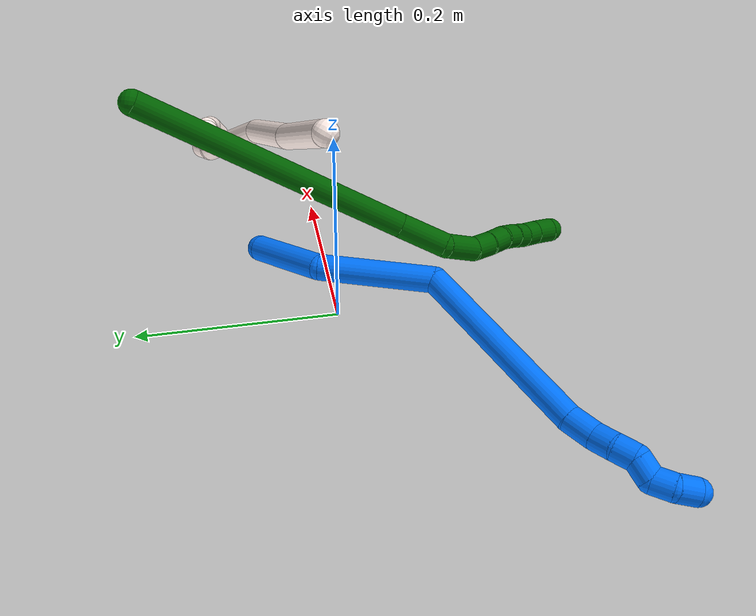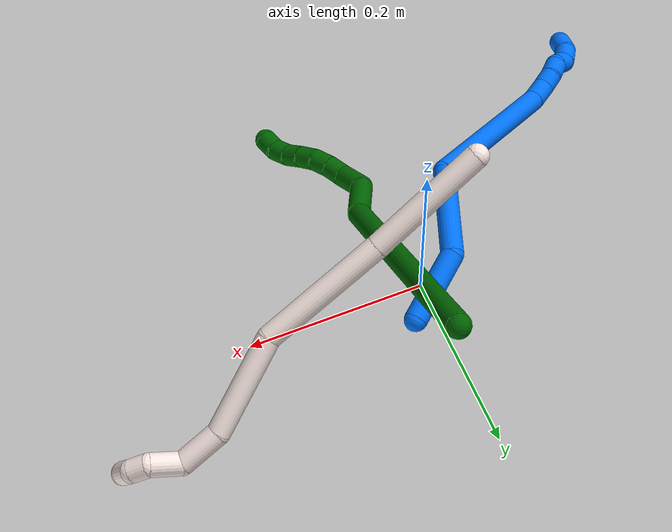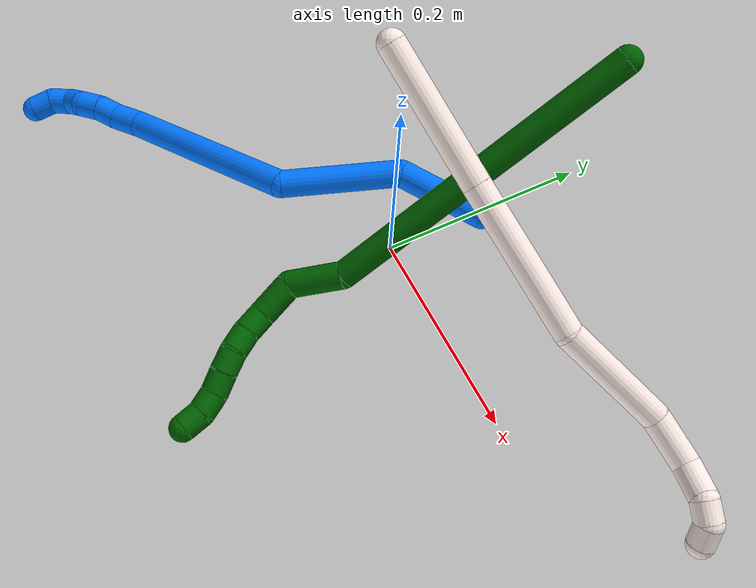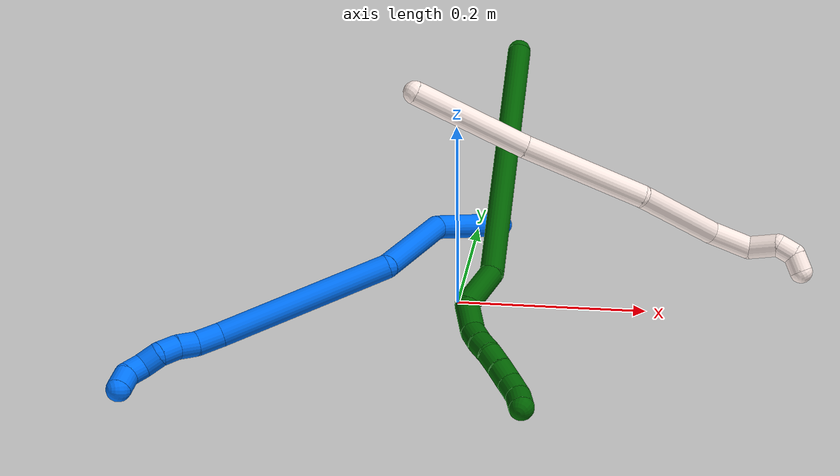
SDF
<sdf version="1.7">
 <world name="default">
  <model name="photoneo_s_sensor">
   <static>1</static>
   <pose>0 0 2 1.57079 1.57079 3.14159</pose>
   <link name="link">
    <inertial><mass>0.1</mass></inertial>
    <sensor name="sensor" type="depth">
     <update_rate>30</update_rate>
     <camera>
      <horizontal_fov>1.22</horizontal_fov>
      <image><width>1920</width><height>1200</height><format>B8G8R8</format></image>
      <clip><near>0.1</near><far>4</far></clip>
      <depth_camera><output>points</output></depth_camera>
     </camera>
     <plugin name="camera_plugin" filename="libgazebo_ros_depth_camera.so">
      <baseline>0.2</baseline>
      <alwaysOn>1</alwaysOn>
      <updateRate>0.0</updateRate>
      <cameraName>camera_ir</cameraName>
      <imageTopicName>/camera/color/image_raw</imageTopicName>
      <cameraInfoTopicName>/camera/color/camera_info</cameraInfoTopicName>
      <depthImageTopicName>/camera/depth/image_raw</depthImageTopicName>
      <depthImageCameraInfoTopicName>/camera/depth/camera_info</depthImageCameraInfoTopicName>
      <pointCloudTopicName>/camera/depth/points</pointCloudTopicName>
      <frameName>fr_optical</frameName>
      <pointCloudCutoff>0.1</pointCloudCutoff>
      <pointCloudCutoffMax>2.0</pointCloudCutoffMax>
      <distortionK1>0</distortionK1>
      <distortionK2>0</distortionK2>
      <distortionK3>0</distortionK3>
      <distortionT1>0</distortionT1>
      <distortionT2>0</distortionT2>
      <CxPrime>0</CxPrime>
      <Cx>0</Cx>
      <Cy>0</Cy>
      <focalLength>0</focalLength>
      <hackBaseline>0</hackBaseline>
     </plugin>
    </sensor>
   </link>
  </model>
  <model name="bin">
   <static>1</static>
   <link name="bottom">
    <collision name="collision-bottom">
     <pose>0 0 -0.01 0 -0 0</pose>
     <geometry><box><size>0.8 0.6 0.02</size></box></geometry>
     <surface>
      <friction><ode><mu>100</mu><mu2>100</mu2></ode></friction>
      <contact><collide_bitmask>65535</collide_bitmask></contact>
     </surface>
    </collision>
   </link>
   <link name="west_wall">
    <collision name="collision-west_wall">
     <pose>-0.41 0 0.1 0 -0 0</pose>
     <geometry><box><size>0.02 0.6 0.2</size></box></geometry>
     <surface>
      <friction><ode><mu>100</mu><mu2>100</mu2></ode></friction>
      <contact><collide_bitmask>65535</collide_bitmask></contact>
     </surface>
    </collision>
   </link>
   <link name="east_wall">
    <collision name="collision-east_wall">
     <pose>0.41 0 0.1 0 -0 0</pose>
     <geometry><box><size>0.02 0.6 0.2</size></box></geometry>
     <surface>
      <friction><ode><mu>100</mu><mu2>100</mu2></ode></friction>
      <contact><collide_bitmask>65535</collide_bitmask></contact>
     </surface>
    </collision>
   </link>
   <link name="south_wall">
    <collision name="collision-south_wall">
     <pose>0 -0.31 0.1 0 -0 0</pose>
     <geometry><box><size>0.8 0.02 0.2</size></box></geometry>
     <surface>
      <friction><ode><mu>100</mu><mu2>100</mu2></ode></friction>
      <contact><collide_bitmask>65535</collide_bitmask></contact>
     </surface>
    </collision>
   </link>
   <link name="north_wall">
    <collision name="collision-north_wall">
     <pose>0 0.31 0.1 0 -0 0</pose>
     <geometry><box><size>0.8 0.02 0.2</size></box></geometry>
     <surface>
      <friction><ode><mu>100</mu><mu2>100</mu2></ode></friction>
      <contact><collide_bitmask>65535</collide_bitmask></contact>
     </surface>
    </collision>
   </link>
  </model>
  <model name="6">
   <static>0</static>
   <link name="6">
    <collision name="collision-cylinder-e_1_1_4">
     <pose>-0.066591 -0.016334 -0.12907 3.01571 -0.473079 -2.63012</pose>
     <geometry><cylinder><radius>0.0125</radius><length>0.292302</length></cylinder></geometry>
     <surface>
      <friction><ode><mu>1.16</mu><mu2>1.16</mu2><slip1>0</slip1><slip2>0</slip2></ode></friction>
      <contact><ode><kp>1e+06</kp><kd>1</kd><max_vel>0</max_vel><min_depth>0.001</min_depth></ode></contact>
     </surface>
    </collision>
    <visual name="visual-cylinder-e_1_1_4">
     <pose>-0.066591 -0.016334 -0.12907 3.01571 -0.473079 -2.63012</pose>
     <geometry><cylinder><radius>0.0125</radius><length>0.292302</length></cylinder></geometry>
     <material><ambient>0 0.392157 0.003922 1</ambient></material>
    </visual>
    <collision name="collision-cylinder-e_2_4_5">
     <pose>-0.134299 -0.039733 -0.282119 2.85509 -0.044662 -0.30725</pose>
     <geometry><cylinder><radius>0.0125</radius><length>0.050048</length></cylinder></geometry>
     <surface>
      <friction><ode><mu>1.16</mu><mu2>1.16</mu2><slip1>0</slip1><slip2>0</slip2></ode></friction>
      <contact><ode><kp>1e+06</kp><kd>1</kd><max_vel>0</max_vel><min_depth>0.001</min_depth></ode></contact>
     </surface>
    </collision>
    <visual name="visual-cylinder-e_2_4_5">
     <pose>-0.134299 -0.039733 -0.282119 2.85509 -0.044662 -0.30725</pose>
     <geometry><cylinder><radius>0.0125</radius><length>0.050048</length></cylinder></geometry>
     <material><ambient>0 0.392157 0.003922 1</ambient></material>
    </visual>
    <collision name="collision-cylinder-e_3_5_6">
     <pose>-0.144595 -0.043338 -0.320962 -2.9129 -0.541539 2.35702</pose>
     <geometry><cylinder><radius>0.0125</radius><length>0.035616</length></cylinder></geometry>
     <surface>
      <friction><ode><mu>1.16</mu><mu2>1.16</mu2><slip1>0</slip1><slip2>0</slip2></ode></friction>
      <contact><ode><kp>1e+06</kp><kd>1</kd><max_vel>0</max_vel><min_depth>0.001</min_depth></ode></contact>
     </surface>
    </collision>
    <visual name="visual-cylinder-e_3_5_6">
     <pose>-0.144595 -0.043338 -0.320962 -2.9129 -0.541539 2.35702</pose>
     <geometry><cylinder><radius>0.0125</radius><length>0.035616</length></cylinder></geometry>
     <material><ambient>0 0.392157 0.003922 1</ambient></material>
    </visual>
    <collision name="collision-cylinder-e_4_6_7">
     <pose>-0.157671 -0.034364 -0.344336 -2.56666 -0.366838 1.1207</pose>
     <geometry><cylinder><radius>0.0125</radius><length>0.021729</length></cylinder></geometry>
     <surface>
      <friction><ode><mu>1.16</mu><mu2>1.16</mu2><slip1>0</slip1><slip2>0</slip2></ode></friction>
      <contact><ode><kp>1e+06</kp><kd>1</kd><max_vel>0</max_vel><min_depth>0.001</min_depth></ode></contact>
     </surface>
    </collision>
    <visual name="visual-cylinder-e_4_6_7">
     <pose>-0.157671 -0.034364 -0.344336 -2.56666 -0.366838 1.1207</pose>
     <geometry><cylinder><radius>0.0125</radius><length>0.021729</length></cylinder></geometry>
     <material><ambient>0 0.392157 0.003922 1</ambient></material>
    </visual>
    <collision name="collision-cylinder-e_5_7_8">
     <pose>-0.166097 -0.023142 -0.359821 -2.45572 -0.46571 1.17262</pose>
     <geometry><cylinder><radius>0.0125</radius><length>0.020172</length></cylinder></geometry>
     <surface>
      <friction><ode><mu>1.16</mu><mu2>1.16</mu2><slip1>0</slip1><slip2>0</slip2></ode></friction>
      <contact><ode><kp>1e+06</kp><kd>1</kd><max_vel>0</max_vel><min_depth>0.001</min_depth></ode></contact>
     </surface>
    </collision>
    <visual name="visual-cylinder-e_5_7_8">
     <pose>-0.166097 -0.023142 -0.359821 -2.45572 -0.46571 1.17262</pose>
     <geometry><cylinder><radius>0.0125</radius><length>0.020172</length></cylinder></geometry>
     <material><ambient>0 0.392157 0.003922 1</ambient></material>
    </visual>
    <collision name="collision-cylinder-e_6_8_9">
     <pose>-0.177191 -0.013214 -0.373131 -2.55397 -0.711631 1.77496</pose>
     <geometry><cylinder><radius>0.0125</radius><length>0.020103</length></cylinder></geometry>
     <surface>
      <friction><ode><mu>1.16</mu><mu2>1.16</mu2><slip1>0</slip1><slip2>0</slip2></ode></friction>
      <contact><ode><kp>1e+06</kp><kd>1</kd><max_vel>0</max_vel><min_depth>0.001</min_depth></ode></contact>
     </surface>
    </collision>
    <visual name="visual-cylinder-e_6_8_9">
     <pose>-0.177191 -0.013214 -0.373131 -2.55397 -0.711631 1.77496</pose>
     <geometry><cylinder><radius>0.0125</radius><length>0.020103</length></cylinder></geometry>
     <material><ambient>0 0.392157 0.003922 1</ambient></material>
    </visual>
    <collision name="collision-cylinder-e_7_9_10">
     <pose>-0.190821 -0.005387 -0.385555 -2.60687 -0.784581 1.97197</pose>
     <geometry><cylinder><radius>0.0125</radius><length>0.020002</length></cylinder></geometry>
     <surface>
      <friction><ode><mu>1.16</mu><mu2>1.16</mu2><slip1>0</slip1><slip2>0</slip2></ode></friction>
      <contact><ode><kp>1e+06</kp><kd>1</kd><max_vel>0</max_vel><min_depth>0.001</min_depth></ode></contact>
     </surface>
    </collision>
    <visual name="visual-cylinder-e_7_9_10">
     <pose>-0.190821 -0.005387 -0.385555 -2.60687 -0.784581 1.97197</pose>
     <geometry><cylinder><radius>0.0125</radius><length>0.020002</length></cylinder></geometry>
     <material><ambient>0 0.392157 0.003922 1</ambient></material>
    </visual>
    <collision name="collision-cylinder-e_8_10_11">
     <pose>-0.203152 0.002735 -0.398849 -2.58166 -0.554433 1.56039</pose>
     <geometry><cylinder><radius>0.0125</radius><length>0.02</length></cylinder></geometry>
     <surface>
      <friction><ode><mu>1.16</mu><mu2>1.16</mu2><slip1>0</slip1><slip2>0</slip2></ode></friction>
      <contact><ode><kp>1e+06</kp><kd>1</kd><max_vel>0</max_vel><min_depth>0.001</min_depth></ode></contact>
     </surface>
    </collision>
    <visual name="visual-cylinder-e_8_10_11">
     <pose>-0.203152 0.002735 -0.398849 -2.58166 -0.554433 1.56039</pose>
     <geometry><cylinder><radius>0.0125</radius><length>0.02</length></cylinder></geometry>
     <material><ambient>0 0.392157 0.003922 1</ambient></material>
    </visual>
    <collision name="collision-cylinder-e_9_11_2">
     <pose>-0.211139 0.011096 -0.414888 -2.73118 -0.275363 1.17468</pose>
     <geometry><cylinder><radius>0.0125</radius><length>0.020027</length></cylinder></geometry>
     <surface>
      <friction><ode><mu>1.16</mu><mu2>1.16</mu2><slip1>0</slip1><slip2>0</slip2></ode></friction>
      <contact><ode><kp>1e+06</kp><kd>1</kd><max_vel>0</max_vel><min_depth>0.001</min_depth></ode></contact>
     </surface>
    </collision>
    <visual name="visual-cylinder-e_9_11_2">
     <pose>-0.211139 0.011096 -0.414888 -2.73118 -0.275363 1.17468</pose>
     <geometry><cylinder><radius>0.0125</radius><length>0.020027</length></cylinder></geometry>
     <material><ambient>0 0.392157 0.003922 1</ambient></material>
    </visual>
    <collision name="collision-sphere-2">
     <pose>-0.213862 0.014941 -0.423725 0 -0 0</pose>
     <geometry><sphere><radius>0.0125</radius></sphere></geometry>
     <surface>
      <friction><ode><mu>1.16</mu><mu2>1.16</mu2><slip1>0</slip1><slip2>0</slip2></ode></friction>
      <contact><ode><kp>1e+06</kp><kd>1</kd><max_vel>0</max_vel><min_depth>0.001</min_depth></ode></contact>
     </surface>
    </collision>
    <visual name="visual-sphere-2">
     <pose>-0.213862 0.014941 -0.423725 0 -0 0</pose>
     <geometry><sphere><radius>0.0125</radius></sphere></geometry>
     <material><ambient>0 0.392157 0.003922 1</ambient></material>
    </visual>
    <collision name="collision-sphere-11">
     <pose>-0.208416 0.007251 -0.406052 0 -0 0</pose>
     <geometry><sphere><radius>0.0125</radius></sphere></geometry>
     <surface>
      <friction><ode><mu>1.16</mu><mu2>1.16</mu2><slip1>0</slip1><slip2>0</slip2></ode></friction>
      <contact><ode><kp>1e+06</kp><kd>1</kd><max_vel>0</max_vel><min_depth>0.001</min_depth></ode></contact>
     </surface>
    </collision>
    <visual name="visual-sphere-11">
     <pose>-0.208416 0.007251 -0.406052 0 -0 0</pose>
     <geometry><sphere><radius>0.0125</radius></sphere></geometry>
     <material><ambient>0 0.392157 0.003922 1</ambient></material>
    </visual>
    <collision name="collision-sphere-10">
     <pose>-0.197887 -0.00178 -0.391645 0 -0 0</pose>
     <geometry><sphere><radius>0.0125</radius></sphere></geometry>
     <surface>
      <friction><ode><mu>1.16</mu><mu2>1.16</mu2><slip1>0</slip1><slip2>0</slip2></ode></friction>
      <contact><ode><kp>1e+06</kp><kd>1</kd><max_vel>0</max_vel><min_depth>0.001</min_depth></ode></contact>
     </surface>
    </collision>
    <visual name="visual-sphere-10">
     <pose>-0.197887 -0.00178 -0.391645 0 -0 0</pose>
     <geometry><sphere><radius>0.0125</radius></sphere></geometry>
     <material><ambient>0 0.392157 0.003922 1</ambient></material>
    </visual>
    <collision name="collision-sphere-9">
     <pose>-0.183755 -0.008994 -0.379466 0 -0 0</pose>
     <geometry><sphere><radius>0.0125</radius></sphere></geometry>
     <surface>
      <friction><ode><mu>1.16</mu><mu2>1.16</mu2><slip1>0</slip1><slip2>0</slip2></ode></friction>
      <contact><ode><kp>1e+06</kp><kd>1</kd><max_vel>0</max_vel><min_depth>0.001</min_depth></ode></contact>
     </surface>
    </collision>
    <visual name="visual-sphere-9">
     <pose>-0.183755 -0.008994 -0.379466 0 -0 0</pose>
     <geometry><sphere><radius>0.0125</radius></sphere></geometry>
     <material><ambient>0 0.392157 0.003922 1</ambient></material>
    </visual>
    <collision name="collision-sphere-4">
     <pose>-0.133181 -0.032668 -0.258139 0 -0 0</pose>
     <geometry><sphere><radius>0.0125</radius></sphere></geometry>
     <surface>
      <friction><ode><mu>1.16</mu><mu2>1.16</mu2><slip1>0</slip1><slip2>0</slip2></ode></friction>
      <contact><ode><kp>1e+06</kp><kd>1</kd><max_vel>0</max_vel><min_depth>0.001</min_depth></ode></contact>
     </surface>
    </collision>
    <visual name="visual-sphere-4">
     <pose>-0.133181 -0.032668 -0.258139 0 -0 0</pose>
     <geometry><sphere><radius>0.0125</radius></sphere></geometry>
     <material><ambient>0 0.392157 0.003922 1</ambient></material>
    </visual>
    <collision name="collision-sphere-1">
     <geometry><sphere><radius>0.0125</radius></sphere></geometry>
     <surface>
      <friction><ode><mu>1.16</mu><mu2>1.16</mu2><slip1>0</slip1><slip2>0</slip2></ode></friction>
      <contact><ode><kp>1e+06</kp><kd>1</kd><max_vel>0</max_vel><min_depth>0.001</min_depth></ode></contact>
     </surface>
    </collision>
    <visual name="visual-sphere-1">
     <geometry><sphere><radius>0.0125</radius></sphere></geometry>
     <material><ambient>0 0.392157 0.003922 1</ambient></material>
    </visual>
    <collision name="collision-sphere-8">
     <pose>-0.170626 -0.017434 -0.366795 0 -0 0</pose>
     <geometry><sphere><radius>0.0125</radius></sphere></geometry>
     <surface>
      <friction><ode><mu>1.16</mu><mu2>1.16</mu2><slip1>0</slip1><slip2>0</slip2></ode></friction>
      <contact><ode><kp>1e+06</kp><kd>1</kd><max_vel>0</max_vel><min_depth>0.001</min_depth></ode></contact>
     </surface>
    </collision>
    <visual name="visual-sphere-8">
     <pose>-0.170626 -0.017434 -0.366795 0 -0 0</pose>
     <geometry><sphere><radius>0.0125</radius></sphere></geometry>
     <material><ambient>0 0.392157 0.003922 1</ambient></material>
    </visual>
    <collision name="collision-sphere-5">
     <pose>-0.135416 -0.046798 -0.306099 0 -0 0</pose>
     <geometry><sphere><radius>0.0125</radius></sphere></geometry>
     <surface>
      <friction><ode><mu>1.16</mu><mu2>1.16</mu2><slip1>0</slip1><slip2>0</slip2></ode></friction>
      <contact><ode><kp>1e+06</kp><kd>1</kd><max_vel>0</max_vel><min_depth>0.001</min_depth></ode></contact>
     </surface>
    </collision>
    <visual name="visual-sphere-5">
     <pose>-0.135416 -0.046798 -0.306099 0 -0 0</pose>
     <geometry><sphere><radius>0.0125</radius></sphere></geometry>
     <material><ambient>0 0.392157 0.003922 1</ambient></material>
    </visual>
    <collision name="collision-sphere-6">
     <pose>-0.153774 -0.039879 -0.335825 0 -0 0</pose>
     <geometry><sphere><radius>0.0125</radius></sphere></geometry>
     <surface>
      <friction><ode><mu>1.16</mu><mu2>1.16</mu2><slip1>0</slip1><slip2>0</slip2></ode></friction>
      <contact><ode><kp>1e+06</kp><kd>1</kd><max_vel>0</max_vel><min_depth>0.001</min_depth></ode></contact>
     </surface>
    </collision>
    <visual name="visual-sphere-6">
     <pose>-0.153774 -0.039879 -0.335825 0 -0 0</pose>
     <geometry><sphere><radius>0.0125</radius></sphere></geometry>
     <material><ambient>0 0.392157 0.003922 1</ambient></material>
    </visual>
    <collision name="collision-sphere-7">
     <pose>-0.161568 -0.028849 -0.352847 0 -0 0</pose>
     <geometry><sphere><radius>0.0125</radius></sphere></geometry>
     <surface>
      <friction><ode><mu>1.16</mu><mu2>1.16</mu2><slip1>0</slip1><slip2>0</slip2></ode></friction>
      <contact><ode><kp>1e+06</kp><kd>1</kd><max_vel>0</max_vel><min_depth>0.001</min_depth></ode></contact>
     </surface>
    </collision>
    <visual name="visual-sphere-7">
     <pose>-0.161568 -0.028849 -0.352847 0 -0 0</pose>
     <geometry><sphere><radius>0.0125</radius></sphere></geometry>
     <material><ambient>0 0.392157 0.003922 1</ambient></material>
    </visual>
    <inertial>
     <pose>-0.107566 -0.019233 -0.219036 0 -0 0</pose>
     <mass>0.5</mass>
     <inertia>
      <ixx>-0.002536</ixx>
      <ixy>0</ixy>
      <ixz>0</ixz>
      <iyy>0.000959</iyy>
      <iyz>0</iyz>
      <izz>0.00116</izz>
     </inertia>
    </inertial>
   </link>
   <pose>0.048631 0.174333 0.227417 1.35994 -0.923332 3.07341</pose>
  </model>
  <model name="11">
   <static>0</static>
   <link name="11">
    <collision name="collision-cylinder-e_1_1_4">
     <pose>0.044483 0.037676 0.029669 -0.903729 0.747847 -0.376385</pose>
     <geometry><cylinder><radius>0.0125</radius><length>0.13082</length></cylinder></geometry>
     <surface>
      <friction><ode><mu>1.16</mu><mu2>1.16</mu2><slip1>0</slip1><slip2>0</slip2></ode></friction>
      <contact><ode><kp>1e+06</kp><kd>1</kd><max_vel>0</max_vel><min_depth>0.001</min_depth></ode></contact>
     </surface>
    </collision>
    <visual name="visual-cylinder-e_1_1_4">
     <pose>0.044483 0.037676 0.029669 -0.903729 0.747847 -0.376385</pose>
     <geometry><cylinder><radius>0.0125</radius><length>0.13082</length></cylinder></geometry>
     <material><ambient>1 0.933333 0.909804 1</ambient></material>
    </visual>
    <collision name="collision-cylinder-e_2_4_5">
     <pose>0.138002 0.112032 0.09287 -0.830231 0.778709 -0.357795</pose>
     <geometry><cylinder><radius>0.0125</radius><length>0.139634</length></cylinder></geometry>
     <surface>
      <friction><ode><mu>1.16</mu><mu2>1.16</mu2><slip1>0</slip1><slip2>0</slip2></ode></friction>
      <contact><ode><kp>1e+06</kp><kd>1</kd><max_vel>0</max_vel><min_depth>0.001</min_depth></ode></contact>
     </surface>
    </collision>
    <visual name="visual-cylinder-e_2_4_5">
     <pose>0.138002 0.112032 0.09287 -0.830231 0.778709 -0.357795</pose>
     <geometry><cylinder><radius>0.0125</radius><length>0.139634</length></cylinder></geometry>
     <material><ambient>1 0.933333 0.909804 1</ambient></material>
    </visual>
    <collision name="collision-cylinder-e_3_5_6">
     <pose>0.208201 0.188159 0.156631 -0.916897 0.402566 -0.200724</pose>
     <geometry><cylinder><radius>0.0125</radius><length>0.108031</length></cylinder></geometry>
     <surface>
      <friction><ode><mu>1.16</mu><mu2>1.16</mu2><slip1>0</slip1><slip2>0</slip2></ode></friction>
      <contact><ode><kp>1e+06</kp><kd>1</kd><max_vel>0</max_vel><min_depth>0.001</min_depth></ode></contact>
     </surface>
    </collision>
    <visual name="visual-cylinder-e_3_5_6">
     <pose>0.208201 0.188159 0.156631 -0.916897 0.402566 -0.200724</pose>
     <geometry><cylinder><radius>0.0125</radius><length>0.108031</length></cylinder></geometry>
     <material><ambient>1 0.933333 0.909804 1</ambient></material>
    </visual>
    <collision name="collision-cylinder-e_4_6_7">
     <pose>0.245814 0.240019 0.198665 -0.810578 0.765162 -0.341929</pose>
     <geometry><cylinder><radius>0.0125</radius><length>0.047501</length></cylinder></geometry>
     <surface>
      <friction><ode><mu>1.16</mu><mu2>1.16</mu2><slip1>0</slip1><slip2>0</slip2></ode></friction>
      <contact><ode><kp>1e+06</kp><kd>1</kd><max_vel>0</max_vel><min_depth>0.001</min_depth></ode></contact>
     </surface>
    </collision>
    <visual name="visual-cylinder-e_4_6_7">
     <pose>0.245814 0.240019 0.198665 -0.810578 0.765162 -0.341929</pose>
     <geometry><cylinder><radius>0.0125</radius><length>0.047501</length></cylinder></geometry>
     <material><ambient>1 0.933333 0.909804 1</ambient></material>
    </visual>
    <collision name="collision-cylinder-e_5_7_8">
     <pose>0.276837 0.248766 0.217951 0.455725 1.05137 0.267447</pose>
     <geometry><cylinder><radius>0.0125</radius><length>0.033571</length></cylinder></geometry>
     <surface>
      <friction><ode><mu>1.16</mu><mu2>1.16</mu2><slip1>0</slip1><slip2>0</slip2></ode></friction>
      <contact><ode><kp>1e+06</kp><kd>1</kd><max_vel>0</max_vel><min_depth>0.001</min_depth></ode></contact>
     </surface>
    </collision>
    <visual name="visual-cylinder-e_5_7_8">
     <pose>0.276837 0.248766 0.217951 0.455725 1.05137 0.267447</pose>
     <geometry><cylinder><radius>0.0125</radius><length>0.033571</length></cylinder></geometry>
     <material><ambient>1 0.933333 0.909804 1</ambient></material>
    </visual>
    <collision name="collision-cylinder-e_6_8_9">
     <pose>0.300483 0.248947 0.227333 -1.11218 1.12909 -0.749969</pose>
     <geometry><cylinder><radius>0.0125</radius><length>0.020077</length></cylinder></geometry>
     <surface>
      <friction><ode><mu>1.16</mu><mu2>1.16</mu2><slip1>0</slip1><slip2>0</slip2></ode></friction>
      <contact><ode><kp>1e+06</kp><kd>1</kd><max_vel>0</max_vel><min_depth>0.001</min_depth></ode></contact>
     </surface>
    </collision>
    <visual name="visual-cylinder-e_6_8_9">
     <pose>0.300483 0.248947 0.227333 -1.11218 1.12909 -0.749969</pose>
     <geometry><cylinder><radius>0.0125</radius><length>0.020077</length></cylinder></geometry>
     <material><ambient>1 0.933333 0.909804 1</ambient></material>
    </visual>
    <collision name="collision-cylinder-e_7_9_2">
     <pose>0.316488 0.259289 0.22556 -2.0855 0.748465 -1.18518</pose>
     <geometry><cylinder><radius>0.0125</radius><length>0.020366</length></cylinder></geometry>
     <surface>
      <friction><ode><mu>1.16</mu><mu2>1.16</mu2><slip1>0</slip1><slip2>0</slip2></ode></friction>
      <contact><ode><kp>1e+06</kp><kd>1</kd><max_vel>0</max_vel><min_depth>0.001</min_depth></ode></contact>
     </surface>
    </collision>
    <visual name="visual-cylinder-e_7_9_2">
     <pose>0.316488 0.259289 0.22556 -2.0855 0.748465 -1.18518</pose>
     <geometry><cylinder><radius>0.0125</radius><length>0.020366</length></cylinder></geometry>
     <material><ambient>1 0.933333 0.909804 1</ambient></material>
    </visual>
    <collision name="collision-sphere-2">
     <pose>0.323418 0.265784 0.221886 0 -0 0</pose>
     <geometry><sphere><radius>0.0125</radius></sphere></geometry>
     <surface>
      <friction><ode><mu>1.16</mu><mu2>1.16</mu2><slip1>0</slip1><slip2>0</slip2></ode></friction>
      <contact><ode><kp>1e+06</kp><kd>1</kd><max_vel>0</max_vel><min_depth>0.001</min_depth></ode></contact>
     </surface>
    </collision>
    <visual name="visual-sphere-2">
     <pose>0.323418 0.265784 0.221886 0 -0 0</pose>
     <geometry><sphere><radius>0.0125</radius></sphere></geometry>
     <material><ambient>1 0.933333 0.909804 1</ambient></material>
    </visual>
    <collision name="collision-sphere-9">
     <pose>0.309558 0.252794 0.229233 0 -0 0</pose>
     <geometry><sphere><radius>0.0125</radius></sphere></geometry>
     <surface>
      <friction><ode><mu>1.16</mu><mu2>1.16</mu2><slip1>0</slip1><slip2>0</slip2></ode></friction>
      <contact><ode><kp>1e+06</kp><kd>1</kd><max_vel>0</max_vel><min_depth>0.001</min_depth></ode></contact>
     </surface>
    </collision>
    <visual name="visual-sphere-9">
     <pose>0.309558 0.252794 0.229233 0 -0 0</pose>
     <geometry><sphere><radius>0.0125</radius></sphere></geometry>
     <material><ambient>1 0.933333 0.909804 1</ambient></material>
    </visual>
    <collision name="collision-sphere-4">
     <pose>0.088965 0.075352 0.059339 0 -0 0</pose>
     <geometry><sphere><radius>0.0125</radius></sphere></geometry>
     <surface>
      <friction><ode><mu>1.16</mu><mu2>1.16</mu2><slip1>0</slip1><slip2>0</slip2></ode></friction>
      <contact><ode><kp>1e+06</kp><kd>1</kd><max_vel>0</max_vel><min_depth>0.001</min_depth></ode></contact>
     </surface>
    </collision>
    <visual name="visual-sphere-4">
     <pose>0.088965 0.075352 0.059339 0 -0 0</pose>
     <geometry><sphere><radius>0.0125</radius></sphere></geometry>
     <material><ambient>1 0.933333 0.909804 1</ambient></material>
    </visual>
    <collision name="collision-sphere-1">
     <geometry><sphere><radius>0.0125</radius></sphere></geometry>
     <surface>
      <friction><ode><mu>1.16</mu><mu2>1.16</mu2><slip1>0</slip1><slip2>0</slip2></ode></friction>
      <contact><ode><kp>1e+06</kp><kd>1</kd><max_vel>0</max_vel><min_depth>0.001</min_depth></ode></contact>
     </surface>
    </collision>
    <visual name="visual-sphere-1">
     <geometry><sphere><radius>0.0125</radius></sphere></geometry>
     <material><ambient>1 0.933333 0.909804 1</ambient></material>
    </visual>
    <collision name="collision-sphere-8">
     <pose>0.291408 0.245099 0.225433 0 -0 0</pose>
     <geometry><sphere><radius>0.0125</radius></sphere></geometry>
     <surface>
      <friction><ode><mu>1.16</mu><mu2>1.16</mu2><slip1>0</slip1><slip2>0</slip2></ode></friction>
      <contact><ode><kp>1e+06</kp><kd>1</kd><max_vel>0</max_vel><min_depth>0.001</min_depth></ode></contact>
     </surface>
    </collision>
    <visual name="visual-sphere-8">
     <pose>0.291408 0.245099 0.225433 0 -0 0</pose>
     <geometry><sphere><radius>0.0125</radius></sphere></geometry>
     <material><ambient>1 0.933333 0.909804 1</ambient></material>
    </visual>
    <collision name="collision-sphere-5">
     <pose>0.187039 0.148713 0.126401 0 -0 0</pose>
     <geometry><sphere><radius>0.0125</radius></sphere></geometry>
     <surface>
      <friction><ode><mu>1.16</mu><mu2>1.16</mu2><slip1>0</slip1><slip2>0</slip2></ode></friction>
      <contact><ode><kp>1e+06</kp><kd>1</kd><max_vel>0</max_vel><min_depth>0.001</min_depth></ode></contact>
     </surface>
    </collision>
    <visual name="visual-sphere-5">
     <pose>0.187039 0.148713 0.126401 0 -0 0</pose>
     <geometry><sphere><radius>0.0125</radius></sphere></geometry>
     <material><ambient>1 0.933333 0.909804 1</ambient></material>
    </visual>
    <collision name="collision-sphere-6">
     <pose>0.229363 0.227605 0.186861 0 -0 0</pose>
     <geometry><sphere><radius>0.0125</radius></sphere></geometry>
     <surface>
      <friction><ode><mu>1.16</mu><mu2>1.16</mu2><slip1>0</slip1><slip2>0</slip2></ode></friction>
      <contact><ode><kp>1e+06</kp><kd>1</kd><max_vel>0</max_vel><min_depth>0.001</min_depth></ode></contact>
     </surface>
    </collision>
    <visual name="visual-sphere-6">
     <pose>0.229363 0.227605 0.186861 0 -0 0</pose>
     <geometry><sphere><radius>0.0125</radius></sphere></geometry>
     <material><ambient>1 0.933333 0.909804 1</ambient></material>
    </visual>
    <collision name="collision-sphere-7">
     <pose>0.262265 0.252433 0.21047 0 -0 0</pose>
     <geometry><sphere><radius>0.0125</radius></sphere></geometry>
     <surface>
      <friction><ode><mu>1.16</mu><mu2>1.16</mu2><slip1>0</slip1><slip2>0</slip2></ode></friction>
      <contact><ode><kp>1e+06</kp><kd>1</kd><max_vel>0</max_vel><min_depth>0.001</min_depth></ode></contact>
     </surface>
    </collision>
    <visual name="visual-sphere-7">
     <pose>0.262265 0.252433 0.21047 0 -0 0</pose>
     <geometry><sphere><radius>0.0125</radius></sphere></geometry>
     <material><ambient>1 0.933333 0.909804 1</ambient></material>
    </visual>
    <inertial>
     <pose>0.16206 0.141861 0.119363 0 -0 0</pose>
     <mass>0.5</mass>
     <inertia>
      <ixx>0.000287</ixx>
      <ixy>0</ixy>
      <ixz>0</ixz>
      <iyy>0.000311</iyy>
      <iyz>0</iyz>
      <izz>-0.000651</izz>
     </inertia>
    </inertial>
   </link>
   <pose>-0.045121 0.013172 0.231374 -1.23133 0.13734 -0.597788</pose>
  </model>
  <model name="14">
   <static>0</static>
   <link name="14">
    <collision name="collision-cylinder-e_1_1_4">
     <pose>-0.00066 7.5e-05 0.04087 -0.001825 -0.016141 1.5e-05</pose>
     <geometry><cylinder><radius>0.0125</radius><length>0.081751</length></cylinder></geometry>
     <surface>
      <friction><ode><mu>1.16</mu><mu2>1.16</mu2><slip1>0</slip1><slip2>0</slip2></ode></friction>
      <contact><ode><kp>1e+06</kp><kd>1</kd><max_vel>0</max_vel><min_depth>0.001</min_depth></ode></contact>
     </surface>
    </collision>
    <visual name="visual-cylinder-e_1_1_4">
     <pose>-0.00066 7.5e-05 0.04087 -0.001825 -0.016141 1.5e-05</pose>
     <geometry><cylinder><radius>0.0125</radius><length>0.081751</length></cylinder></geometry>
     <material><ambient>0 0.462745 1 1</ambient></material>
    </visual>
    <collision name="collision-cylinder-e_2_4_5">
     <pose>-0.011082 -0.028775 0.127272 0.565944 -0.179039 -0.052188</pose>
     <geometry><cylinder><radius>0.0125</radius><length>0.109637</length></cylinder></geometry>
     <surface>
      <friction><ode><mu>1.16</mu><mu2>1.16</mu2><slip1>0</slip1><slip2>0</slip2></ode></friction>
      <contact><ode><kp>1e+06</kp><kd>1</kd><max_vel>0</max_vel><min_depth>0.001</min_depth></ode></contact>
     </surface>
    </collision>
    <visual name="visual-cylinder-e_2_4_5">
     <pose>-0.011082 -0.028775 0.127272 0.565944 -0.179039 -0.052188</pose>
     <geometry><cylinder><radius>0.0125</radius><length>0.109637</length></cylinder></geometry>
     <material><ambient>0 0.462745 1 1</ambient></material>
    </visual>
    <collision name="collision-cylinder-e_3_5_6">
     <pose>-0.060591 -0.042813 0.253212 -0.183066 -0.452424 0.042245</pose>
     <geometry><cylinder><radius>0.0125</radius><length>0.181846</length></cylinder></geometry>
     <surface>
      <friction><ode><mu>1.16</mu><mu2>1.16</mu2><slip1>0</slip1><slip2>0</slip2></ode></friction>
      <contact><ode><kp>1e+06</kp><kd>1</kd><max_vel>0</max_vel><min_depth>0.001</min_depth></ode></contact>
     </surface>
    </collision>
    <visual name="visual-cylinder-e_3_5_6">
     <pose>-0.060591 -0.042813 0.253212 -0.183066 -0.452424 0.042245</pose>
     <geometry><cylinder><radius>0.0125</radius><length>0.181846</length></cylinder></geometry>
     <material><ambient>0 0.462745 1 1</ambient></material>
    </visual>
    <collision name="collision-cylinder-e_4_6_7">
     <pose>-0.104773 -0.027614 0.346213 -0.024828 -0.338553 0.004244</pose>
     <geometry><cylinder><radius>0.0125</radius><length>0.026709</length></cylinder></geometry>
     <surface>
      <friction><ode><mu>1.16</mu><mu2>1.16</mu2><slip1>0</slip1><slip2>0</slip2></ode></friction>
      <contact><ode><kp>1e+06</kp><kd>1</kd><max_vel>0</max_vel><min_depth>0.001</min_depth></ode></contact>
     </surface>
    </collision>
    <visual name="visual-cylinder-e_4_6_7">
     <pose>-0.104773 -0.027614 0.346213 -0.024828 -0.338553 0.004244</pose>
     <geometry><cylinder><radius>0.0125</radius><length>0.026709</length></cylinder></geometry>
     <material><ambient>0 0.462745 1 1</ambient></material>
    </visual>
    <collision name="collision-cylinder-e_5_7_8">
     <pose>-0.110567 -0.026818 0.368729 -0.04858 -0.135948 0.003308</pose>
     <geometry><cylinder><radius>0.0125</radius><length>0.020055</length></cylinder></geometry>
     <surface>
      <friction><ode><mu>1.16</mu><mu2>1.16</mu2><slip1>0</slip1><slip2>0</slip2></ode></friction>
      <contact><ode><kp>1e+06</kp><kd>1</kd><max_vel>0</max_vel><min_depth>0.001</min_depth></ode></contact>
     </surface>
    </collision>
    <visual name="visual-cylinder-e_5_7_8">
     <pose>-0.110567 -0.026818 0.368729 -0.04858 -0.135948 0.003308</pose>
     <geometry><cylinder><radius>0.0125</radius><length>0.020055</length></cylinder></geometry>
     <material><ambient>0 0.462745 1 1</ambient></material>
    </visual>
    <collision name="collision-cylinder-e_6_8_9">
     <pose>-0.114676 -0.027497 0.388197 0.121056 -0.278598 -0.016993</pose>
     <geometry><cylinder><radius>0.0125</radius><length>0.020002</length></cylinder></geometry>
     <surface>
      <friction><ode><mu>1.16</mu><mu2>1.16</mu2><slip1>0</slip1><slip2>0</slip2></ode></friction>
      <contact><ode><kp>1e+06</kp><kd>1</kd><max_vel>0</max_vel><min_depth>0.001</min_depth></ode></contact>
     </surface>
    </collision>
    <visual name="visual-cylinder-e_6_8_9">
     <pose>-0.114676 -0.027497 0.388197 0.121056 -0.278598 -0.016993</pose>
     <geometry><cylinder><radius>0.0125</radius><length>0.020002</length></cylinder></geometry>
     <material><ambient>0 0.462745 1 1</ambient></material>
    </visual>
    <collision name="collision-cylinder-e_7_9_10">
     <pose>-0.124044 -0.026798 0.405005 -0.250713 -0.723138 0.095246</pose>
     <geometry><cylinder><radius>0.0125</radius><length>0.02</length></cylinder></geometry>
     <surface>
      <friction><ode><mu>1.16</mu><mu2>1.16</mu2><slip1>0</slip1><slip2>0</slip2></ode></friction>
      <contact><ode><kp>1e+06</kp><kd>1</kd><max_vel>0</max_vel><min_depth>0.001</min_depth></ode></contact>
     </surface>
    </collision>
    <visual name="visual-cylinder-e_7_9_10">
     <pose>-0.124044 -0.026798 0.405005 -0.250713 -0.723138 0.095246</pose>
     <geometry><cylinder><radius>0.0125</radius><length>0.02</length></cylinder></geometry>
     <material><ambient>0 0.462745 1 1</ambient></material>
    </visual>
    <collision name="collision-cylinder-e_8_10_11">
     <pose>-0.133367 -0.02814 0.421348 0.339038 -0.273945 -0.047176</pose>
     <geometry><cylinder><radius>0.0125</radius><length>0.02</length></cylinder></geometry>
     <surface>
      <friction><ode><mu>1.16</mu><mu2>1.16</mu2><slip1>0</slip1><slip2>0</slip2></ode></friction>
      <contact><ode><kp>1e+06</kp><kd>1</kd><max_vel>0</max_vel><min_depth>0.001</min_depth></ode></contact>
     </surface>
    </collision>
    <visual name="visual-cylinder-e_8_10_11">
     <pose>-0.133367 -0.02814 0.421348 0.339038 -0.273945 -0.047176</pose>
     <geometry><cylinder><radius>0.0125</radius><length>0.02</length></cylinder></geometry>
     <material><ambient>0 0.462745 1 1</ambient></material>
    </visual>
    <collision name="collision-cylinder-e_9_11_2">
     <pose>-0.140156 -0.037986 0.436685 0.815311 -0.420675 -0.183875</pose>
     <geometry><cylinder><radius>0.0125</radius><length>0.02</length></cylinder></geometry>
     <surface>
      <friction><ode><mu>1.16</mu><mu2>1.16</mu2><slip1>0</slip1><slip2>0</slip2></ode></friction>
      <contact><ode><kp>1e+06</kp><kd>1</kd><max_vel>0</max_vel><min_depth>0.001</min_depth></ode></contact>
     </surface>
    </collision>
    <visual name="visual-cylinder-e_9_11_2">
     <pose>-0.140156 -0.037986 0.436685 0.815311 -0.420675 -0.183875</pose>
     <geometry><cylinder><radius>0.0125</radius><length>0.02</length></cylinder></geometry>
     <material><ambient>0 0.462745 1 1</ambient></material>
    </visual>
    <collision name="collision-sphere-2">
     <pose>-0.14424 -0.044631 0.442944 0 -0 0</pose>
     <geometry><sphere><radius>0.0125</radius></sphere></geometry>
     <surface>
      <friction><ode><mu>1.16</mu><mu2>1.16</mu2><slip1>0</slip1><slip2>0</slip2></ode></friction>
      <contact><ode><kp>1e+06</kp><kd>1</kd><max_vel>0</max_vel><min_depth>0.001</min_depth></ode></contact>
     </surface>
    </collision>
    <visual name="visual-sphere-2">
     <pose>-0.14424 -0.044631 0.442944 0 -0 0</pose>
     <geometry><sphere><radius>0.0125</radius></sphere></geometry>
     <material><ambient>0 0.462745 1 1</ambient></material>
    </visual>
    <collision name="collision-sphere-11">
     <pose>-0.136073 -0.031342 0.430427 0 -0 0</pose>
     <geometry><sphere><radius>0.0125</radius></sphere></geometry>
     <surface>
      <friction><ode><mu>1.16</mu><mu2>1.16</mu2><slip1>0</slip1><slip2>0</slip2></ode></friction>
      <contact><ode><kp>1e+06</kp><kd>1</kd><max_vel>0</max_vel><min_depth>0.001</min_depth></ode></contact>
     </surface>
    </collision>
    <visual name="visual-sphere-11">
     <pose>-0.136073 -0.031342 0.430427 0 -0 0</pose>
     <geometry><sphere><radius>0.0125</radius></sphere></geometry>
     <material><ambient>0 0.462745 1 1</ambient></material>
    </visual>
    <collision name="collision-sphere-10">
     <pose>-0.130662 -0.024938 0.412268 0 -0 0</pose>
     <geometry><sphere><radius>0.0125</radius></sphere></geometry>
     <surface>
      <friction><ode><mu>1.16</mu><mu2>1.16</mu2><slip1>0</slip1><slip2>0</slip2></ode></friction>
      <contact><ode><kp>1e+06</kp><kd>1</kd><max_vel>0</max_vel><min_depth>0.001</min_depth></ode></contact>
     </surface>
    </collision>
    <visual name="visual-sphere-10">
     <pose>-0.130662 -0.024938 0.412268 0 -0 0</pose>
     <geometry><sphere><radius>0.0125</radius></sphere></geometry>
     <material><ambient>0 0.462745 1 1</ambient></material>
    </visual>
    <collision name="collision-sphere-9">
     <pose>-0.117427 -0.028658 0.397742 0 -0 0</pose>
     <geometry><sphere><radius>0.0125</radius></sphere></geometry>
     <surface>
      <friction><ode><mu>1.16</mu><mu2>1.16</mu2><slip1>0</slip1><slip2>0</slip2></ode></friction>
      <contact><ode><kp>1e+06</kp><kd>1</kd><max_vel>0</max_vel><min_depth>0.001</min_depth></ode></contact>
     </surface>
    </collision>
    <visual name="visual-sphere-9">
     <pose>-0.117427 -0.028658 0.397742 0 -0 0</pose>
     <geometry><sphere><radius>0.0125</radius></sphere></geometry>
     <material><ambient>0 0.462745 1 1</ambient></material>
    </visual>
    <collision name="collision-sphere-4">
     <pose>-0.001319 0.000149 0.08174 0 -0 0</pose>
     <geometry><sphere><radius>0.0125</radius></sphere></geometry>
     <surface>
      <friction><ode><mu>1.16</mu><mu2>1.16</mu2><slip1>0</slip1><slip2>0</slip2></ode></friction>
      <contact><ode><kp>1e+06</kp><kd>1</kd><max_vel>0</max_vel><min_depth>0.001</min_depth></ode></contact>
     </surface>
    </collision>
    <visual name="visual-sphere-4">
     <pose>-0.001319 0.000149 0.08174 0 -0 0</pose>
     <geometry><sphere><radius>0.0125</radius></sphere></geometry>
     <material><ambient>0 0.462745 1 1</ambient></material>
    </visual>
    <collision name="collision-sphere-1">
     <geometry><sphere><radius>0.0125</radius></sphere></geometry>
     <surface>
      <friction><ode><mu>1.16</mu><mu2>1.16</mu2><slip1>0</slip1><slip2>0</slip2></ode></friction>
      <contact><ode><kp>1e+06</kp><kd>1</kd><max_vel>0</max_vel><min_depth>0.001</min_depth></ode></contact>
     </surface>
    </collision>
    <visual name="visual-sphere-1">
     <geometry><sphere><radius>0.0125</radius></sphere></geometry>
     <material><ambient>0 0.462745 1 1</ambient></material>
    </visual>
    <collision name="collision-sphere-8">
     <pose>-0.111926 -0.026336 0.378652 0 -0 0</pose>
     <geometry><sphere><radius>0.0125</radius></sphere></geometry>
     <surface>
      <friction><ode><mu>1.16</mu><mu2>1.16</mu2><slip1>0</slip1><slip2>0</slip2></ode></friction>
      <contact><ode><kp>1e+06</kp><kd>1</kd><max_vel>0</max_vel><min_depth>0.001</min_depth></ode></contact>
     </surface>
    </collision>
    <visual name="visual-sphere-8">
     <pose>-0.111926 -0.026336 0.378652 0 -0 0</pose>
     <geometry><sphere><radius>0.0125</radius></sphere></geometry>
     <material><ambient>0 0.462745 1 1</ambient></material>
    </visual>
    <collision name="collision-sphere-5">
     <pose>-0.020844 -0.0577 0.172803 0 -0 0</pose>
     <geometry><sphere><radius>0.0125</radius></sphere></geometry>
     <surface>
      <friction><ode><mu>1.16</mu><mu2>1.16</mu2><slip1>0</slip1><slip2>0</slip2></ode></friction>
      <contact><ode><kp>1e+06</kp><kd>1</kd><max_vel>0</max_vel><min_depth>0.001</min_depth></ode></contact>
     </surface>
    </collision>
    <visual name="visual-sphere-5">
     <pose>-0.020844 -0.0577 0.172803 0 -0 0</pose>
     <geometry><sphere><radius>0.0125</radius></sphere></geometry>
     <material><ambient>0 0.462745 1 1</ambient></material>
    </visual>
    <collision name="collision-sphere-6">
     <pose>-0.100337 -0.027926 0.333621 0 -0 0</pose>
     <geometry><sphere><radius>0.0125</radius></sphere></geometry>
     <surface>
      <friction><ode><mu>1.16</mu><mu2>1.16</mu2><slip1>0</slip1><slip2>0</slip2></ode></friction>
      <contact><ode><kp>1e+06</kp><kd>1</kd><max_vel>0</max_vel><min_depth>0.001</min_depth></ode></contact>
     </surface>
    </collision>
    <visual name="visual-sphere-6">
     <pose>-0.100337 -0.027926 0.333621 0 -0 0</pose>
     <geometry><sphere><radius>0.0125</radius></sphere></geometry>
     <material><ambient>0 0.462745 1 1</ambient></material>
    </visual>
    <collision name="collision-sphere-7">
     <pose>-0.109208 -0.027301 0.358805 0 -0 0</pose>
     <geometry><sphere><radius>0.0125</radius></sphere></geometry>
     <surface>
      <friction><ode><mu>1.16</mu><mu2>1.16</mu2><slip1>0</slip1><slip2>0</slip2></ode></friction>
      <contact><ode><kp>1e+06</kp><kd>1</kd><max_vel>0</max_vel><min_depth>0.001</min_depth></ode></contact>
     </surface>
    </collision>
    <visual name="visual-sphere-7">
     <pose>-0.109208 -0.027301 0.358805 0 -0 0</pose>
     <geometry><sphere><radius>0.0125</radius></sphere></geometry>
     <material><ambient>0 0.462745 1 1</ambient></material>
    </visual>
    <inertial>
     <pose>-0.055096 -0.029236 0.226016 0 -0 0</pose>
     <mass>0.5</mass>
     <inertia>
      <ixx>0.000629</ixx>
      <ixy>0</ixy>
      <ixz>0</ixz>
      <iyy>0.000666</iyy>
      <iyz>0</iyz>
      <izz>0.000259</izz>
     </inertia>
    </inertial>
   </link>
   <pose>0.038504 0.069724 0.062713 0.05587 -1.36477 0.60905</pose>
  </model>
 </world>
</sdf>
